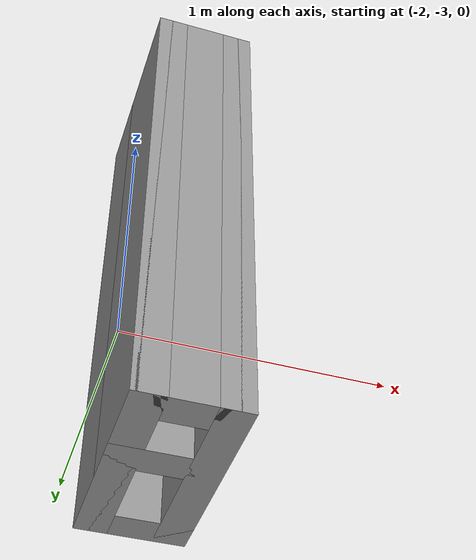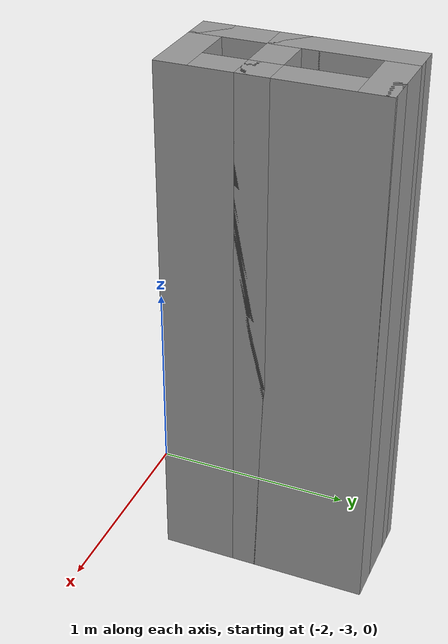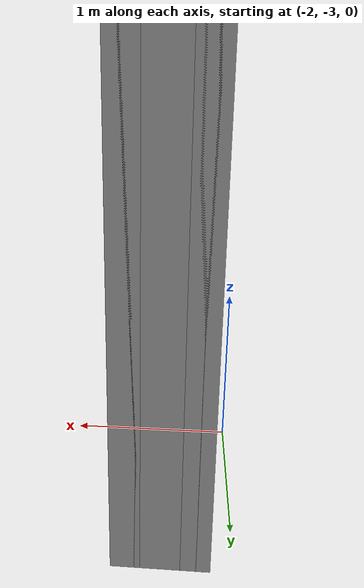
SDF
<?xml version='1.0'?>
<sdf version='1.6'>
  <model name='B'>
    <pose frame=''>-1.63251 -2.19885 0 0 -0 0</pose>
    <link name='Wall_52'>
      <collision name='Wall_52_Collision'>
        <geometry>
          <box>
            <size>1 0.15 2.5</size>
          </box>
        </geometry>
        <pose frame=''>0 0 1.25 0 -0 0</pose>
      </collision>
      <visual name='Wall_52_Visual'>
        <pose frame=''>0 0 1.25 0 -0 0</pose>
        <geometry>
          <box>
            <size>1 0.15 2.5</size>
          </box>
        </geometry>
        <material>
          <script>
            <uri>file://media/materials/scripts/gazebo.material</uri>
            <name>Gazebo/Grey</name>
          </script>
          <ambient>1 1 1 1</ambient>
        </material>
        <meta>
          <layer>0</layer>
        </meta>
      </visual>
      <pose frame=''>-0.175 -0 0 0 -0 -1.5708</pose>
    </link>
    <link name='Wall_53'>
      <collision name='Wall_53_Collision'>
        <geometry>
          <box>
            <size>0.5 0.15 2.5</size>
          </box>
        </geometry>
        <pose frame=''>0 0 1.25 0 -0 0</pose>
      </collision>
      <visual name='Wall_53_Visual'>
        <pose frame=''>0 0 1.25 0 -0 0</pose>
        <geometry>
          <box>
            <size>0.5 0.15 2.5</size>
          </box>
        </geometry>
        <material>
          <script>
            <uri>file://media/materials/scripts/gazebo.material</uri>
            <name>Gazebo/Grey</name>
          </script>
          <ambient>1 1 1 1</ambient>
        </material>
        <meta>
          <layer>0</layer>
        </meta>
      </visual>
      <pose frame=''>0 -0.425 0 0 -0 0</pose>
    </link>
    <link name='Wall_54'>
      <collision name='Wall_54_Collision'>
        <geometry>
          <box>
            <size>0.5 0.15 2.5</size>
          </box>
        </geometry>
        <pose frame=''>0 0 1.25 0 -0 0</pose>
      </collision>
      <visual name='Wall_54_Visual'>
        <pose frame=''>0 0 1.25 0 -0 0</pose>
        <geometry>
          <box>
            <size>0.5 0.15 2.5</size>
          </box>
        </geometry>
        <material>
          <script>
            <uri>file://media/materials/scripts/gazebo.material</uri>
            <name>Gazebo/Grey</name>
          </script>
          <ambient>1 1 1 1</ambient>
        </material>
        <meta>
          <layer>0</layer>
        </meta>
      </visual>
      <pose frame=''>0.175 -0.25 0 0 -0 1.5708</pose>
    </link>
    <link name='Wall_55'>
      <collision name='Wall_55_Collision'>
        <geometry>
          <box>
            <size>0.15 0.15 2.5</size>
          </box>
        </geometry>
        <pose frame=''>0 0 1.25 0 -0 0</pose>
      </collision>
      <visual name='Wall_55_Visual'>
        <pose frame=''>0 0 1.25 0 -0 0</pose>
        <geometry>
          <box>
            <size>0.15 0.15 2.5</size>
          </box>
        </geometry>
        <material>
          <script>
            <uri>file://media/materials/scripts/gazebo.material</uri>
            <name>Gazebo/Grey</name>
          </script>
          <ambient>1 1 1 1</ambient>
        </material>
        <meta>
          <layer>0</layer>
        </meta>
      </visual>
      <pose frame=''>0.175 -0.075 0 0 -0 0</pose>
    </link>
    <link name='Wall_56'>
      <collision name='Wall_56_Collision'>
        <geometry>
          <box>
            <size>0.5 0.15 2.5</size>
          </box>
        </geometry>
        <pose frame=''>0 0 1.25 0 -0 0</pose>
      </collision>
      <visual name='Wall_56_Visual'>
        <pose frame=''>0 0 1.25 0 -0 0</pose>
        <geometry>
          <box>
            <size>0.5 0.15 2.5</size>
          </box>
        </geometry>
        <material>
          <script>
            <uri>file://media/materials/scripts/gazebo.material</uri>
            <name>Gazebo/Grey</name>
          </script>
          <ambient>1 1 1 1</ambient>
        </material>
        <meta>
          <layer>0</layer>
        </meta>
      </visual>
      <pose frame=''>0 -0.075 0 0 -0 3.14159</pose>
    </link>
    <link name='Wall_57'>
      <collision name='Wall_57_Collision'>
        <geometry>
          <box>
            <size>0.65 0.15 2.5</size>
          </box>
        </geometry>
        <pose frame=''>0 0 1.25 0 -0 0</pose>
      </collision>
      <visual name='Wall_57_Visual'>
        <pose frame=''>0 0 1.25 0 -0 0</pose>
        <geometry>
          <box>
            <size>0.65 0.15 2.5</size>
          </box>
        </geometry>
        <material>
          <script>
            <uri>file://media/materials/scripts/gazebo.material</uri>
            <name>Gazebo/Grey</name>
          </script>
          <ambient>1 1 1 1</ambient>
        </material>
        <meta>
          <layer>0</layer>
        </meta>
      </visual>
      <pose frame=''>-0.175 0.175 0 0 -0 1.5708</pose>
    </link>
    <link name='Wall_58'>
      <collision name='Wall_58_Collision'>
        <geometry>
          <box>
            <size>0.5 0.15 2.5</size>
          </box>
        </geometry>
        <pose frame=''>0 0 1.25 0 -0 0</pose>
      </collision>
      <visual name='Wall_58_Visual'>
        <pose frame=''>0 0 1.25 0 -0 0</pose>
        <geometry>
          <box>
            <size>0.5 0.15 2.5</size>
          </box>
        </geometry>
        <material>
          <script>
            <uri>file://media/materials/scripts/gazebo.material</uri>
            <name>Gazebo/Grey</name>
          </script>
          <ambient>1 1 1 1</ambient>
        </material>
        <meta>
          <layer>0</layer>
        </meta>
      </visual>
      <pose frame=''>0 0.425 0 0 -0 0</pose>
    </link>
    <link name='Wall_59'>
      <collision name='Wall_59_Collision'>
        <geometry>
          <box>
            <size>1 0.15 2.5</size>
          </box>
        </geometry>
        <pose frame=''>0 0 1.25 0 -0 0</pose>
      </collision>
      <visual name='Wall_59_Visual'>
        <pose frame=''>0 0 1.25 0 -0 0</pose>
        <geometry>
          <box>
            <size>1 0.15 2.5</size>
          </box>
        </geometry>
        <material>
          <script>
            <uri>file://media/materials/scripts/gazebo.material</uri>
            <name>Gazebo/Grey</name>
          </script>
          <ambient>1 1 1 1</ambient>
        </material>
        <meta>
          <layer>0</layer>
        </meta>
      </visual>
      <pose frame=''>0.175 -0 0 0 -0 -1.5708</pose>
    </link>
    <static>1</static>
  </model>
</sdf>
